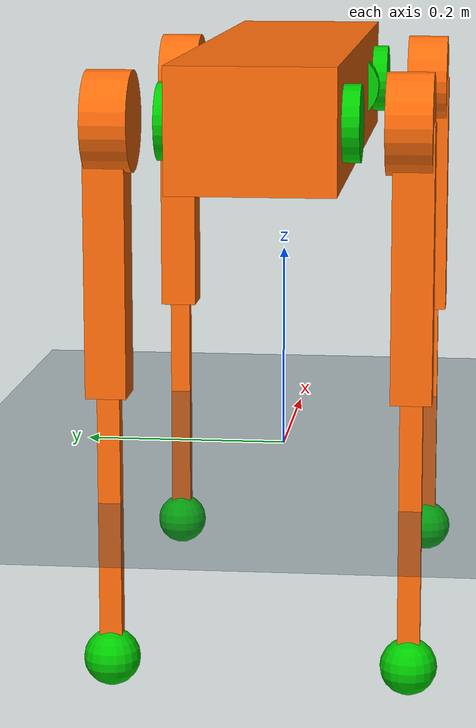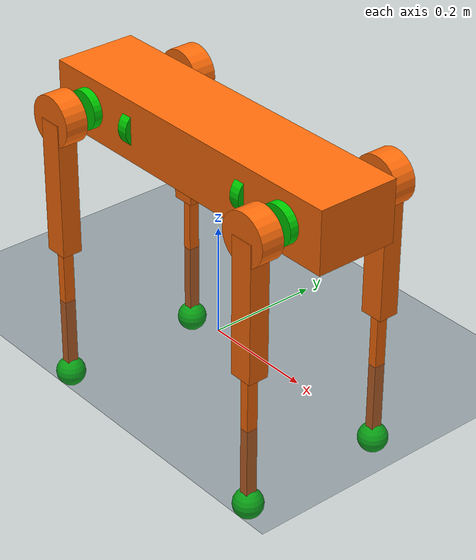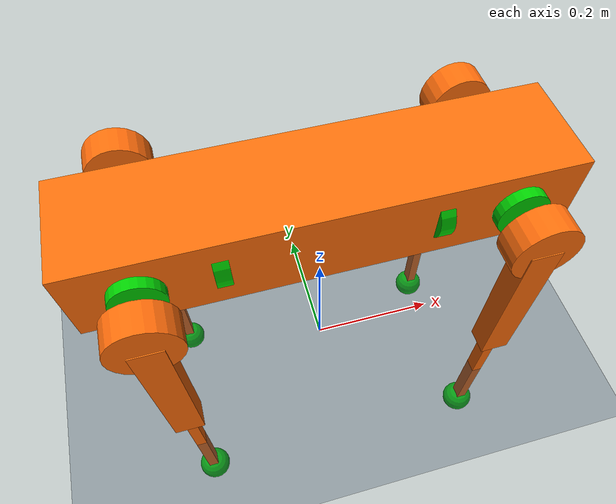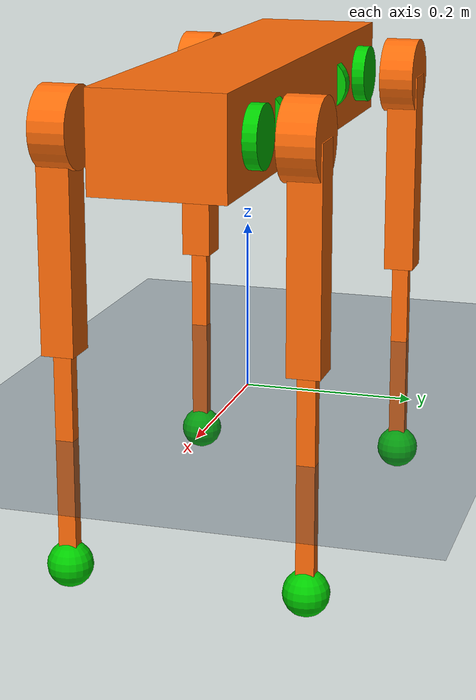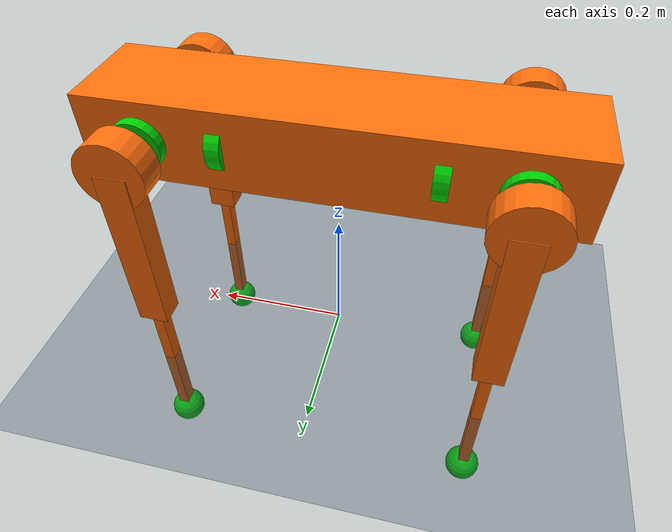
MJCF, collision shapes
<mujoco model="aliengo">
  <compiler angle="radian" meshdir="../meshes/" />

  <option timestep='0.001' iterations='50' solver='PGS' gravity='0 0 -9.81'/>
  <visual>
    <global fovy="60" />
  </visual>

  <asset>
    <mesh name="trunk" file="trunk.stl" />
    <mesh name="hip" file="hip.stl" />
    <mesh name="thigh_mirror" file="thigh_mirror.stl" />
    <mesh name="calf" file="calf.stl" />
    <mesh name="thigh" file="thigh.stl" />
    <texture name="texplane" type="2d" builtin="checker" rgb1=".2 .3 .4" rgb2=".1 0.15 0.2"
        width="512" height="512" mark="cross" markrgb=".8 .8 .8"/>
    <material name="matplane" reflectance="0." texture="texplane" texrepeat="1 1" texuniform="true"/>
  </asset>

  <worldbody>
    <light directional="true" diffuse=".4 .4 .4" specular="0.1 0.1 0.1" pos="0 0 5.0" dir="0 0 -1"
      castshadow="false" />
    <light directional="true" diffuse=".6 .6 .6" specular="0.2 0.2 0.2" pos="0 0 4" dir="0 0 -1" />
    <geom name="ground" type="plane" size="0 0 1" pos="0.001 0 0" quat="1 0 0 0" material="matplane"
      condim="1" conaffinity='15' />

    <body name="base" pos="0.0 0.0 0.35">
      <geom type="mesh" contype="0" conaffinity="0" group="1" density="0"
        rgba="1 0.423529 0.0392157 1" mesh="trunk" />

      <inertial pos="0.008811 0.003839 0.000273" mass="11.644" diaginertia="0.051944892 0.24693924 0.270948307" />
      <joint type='slide' axis='1 0 0' limited='false' />
      <joint type='slide' axis='0 1 0' limited='false' />
      <joint type='slide' axis='0 0 1' limited='false' />
      <joint type='ball' limited='false' />
      <site name='imu' size='0.01' pos='0.0 0 0.0'/>

      <geom size="0.0005 0.0005 0.0005" type="box" contype="0" conaffinity="0" group="1" density="0" />
      <geom size="0.3235 0.075 0.056" type="box" rgba="1 0.423529 0.0392157 1" />
      <geom size="0.0005 0.0005 0.0005" type="box" contype="0" conaffinity="0" group="1" density="0"
        rgba="0.8 0 0 1" />
      <geom size="0.0005 0.0005 0.0005" type="box" rgba="0.8 0 0 1" />
      <geom size="0.035 0.01" pos="0.139985 -0.051 0" quat="0.707107 0 0.707107 0" type="cylinder"
        contype="0" conaffinity="0" group="1" density="0" rgba="0 0.8 0 1" />
      <geom size="0.035 0.01" pos="0.139985 -0.051 0" quat="0.707107 0 0.707107 0" type="cylinder"
        rgba="0 0.8 0 1" />
      <geom size="0.035 0.01" pos="0.139985 0.051 0" quat="0.707107 0 0.707107 0" type="cylinder"
        contype="0" conaffinity="0" group="1" density="0" rgba="0 0.8 0 1" />
      <geom size="0.035 0.01" pos="0.139985 0.051 0" quat="0.707107 0 0.707107 0" type="cylinder"
        rgba="0 0.8 0 1" />
      <geom size="0.035 0.01" pos="-0.139985 -0.051 0" quat="0.707107 0 0.707107 0" type="cylinder"
        contype="0" conaffinity="0" group="1" density="0" rgba="0 0.8 0 1" />
      <geom size="0.035 0.01" pos="-0.139985 -0.051 0" quat="0.707107 0 0.707107 0" type="cylinder"
        rgba="0 0.8 0 1" />
      <geom size="0.035 0.01" pos="-0.139985 0.051 0" quat="0.707107 0 0.707107 0" type="cylinder"
        contype="0" conaffinity="0" group="1" density="0" rgba="0 0.8 0 1" />
      <geom size="0.035 0.01" pos="-0.139985 0.051 0" quat="0.707107 0 0.707107 0" type="cylinder"
        rgba="0 0.8 0 1" />
      <body name="FR_hip" pos="0.2407 -0.051 0">
        <inertial pos="-0.0206763 -0.0161444 -1.39762e-05" quat="0.58092 0.574831 0.412459 0.402465"
          mass="2.139" diaginertia="0.0043606 0.0043277 0.00233028" />
        <joint name="FR_hip_joint" pos="0 0 0" axis="1 0 0" range="-1.22173 1.22173"
          actuatorfrcrange="-35.278 35.278" />
        <geom quat="0 1 0 0" type="mesh" contype="0" conaffinity="0" group="1" density="0"
          rgba="1 0.423529 0.0392157 1" mesh="hip" />
        <geom size="0.046 0.0209" pos="0 -0.083 0" quat="0.707107 0.707107 0 0" type="cylinder"
          rgba="1 0.423529 0.0392157 1" />
        <geom size="0.035 0.01" pos="0 -0.0298 0" quat="0.707107 0.707107 0 0" type="cylinder"
          contype="0" conaffinity="0" group="1" density="0" rgba="0 0.8 0 1" />
        <geom size="0.035 0.01" pos="0 -0.0298 0" quat="0.707107 0.707107 0 0" type="cylinder"
          rgba="0 0.8 0 1" />
        <body name="FR_thigh" pos="0 -0.0868 0">
          <inertial pos="-0.00464705 0.0202825 -0.039947"
            quat="0.994998 -0.0906147 0.0414285 -0.0071304" mass="0.771"
            diaginertia="0.00560787 0.004847 0.00135111" />
          <joint name="FR_thigh_joint" pos="0 0 0" axis="0 1 0" actuatorfrcrange="-35.278 35.278" />
          <geom type="mesh" contype="0" conaffinity="0" group="1" density="0"
            rgba="1 0.423529 0.0392157 1" mesh="thigh_mirror" />
          <geom size="0.125 0.0187 0.0215" pos="0 0 -0.125" quat="0.707107 0 0.707107 0" type="box"
            rgba="1 0.423529 0.0392157 1" />
          <geom size="0.035 0.01" pos="0 0.0997 0" quat="0.707107 0.707107 0 0" type="cylinder"
            contype="0" conaffinity="0" group="1" density="0" rgba="0 0.8 0 1" />
          <geom size="0.035 0.01" pos="0 0.0997 0" quat="0.707107 0.707107 0 0" type="cylinder"
            rgba="0 0.8 0 1" />
          <body name="FR_calf" pos="0 0 -0.25">
            <inertial pos="0.00215606 4.88427e-05 -0.166671"
              quat="0.708049 0.000982931 0.00120829 0.706161" mass="0.267"
              diaginertia="0.00269606 0.00268354 5.47714e-05" />
            <joint name="FR_calf_joint" pos="0 0 0" axis="0 1 0" range="-2.77507 -0.645772"
              actuatorfrcrange="-44.4 44.4" />
            <geom type="mesh" contype="0" conaffinity="0" group="1" density="0"
              rgba="1 0.423529 0.0392157 1" mesh="calf" />
            <geom size="0.125 0.0104 0.008" pos="0 0 -0.125" quat="0.707107 0 0.707107 0" type="box"
              rgba="1 0.423529 0.0392157 1" />
            <geom size="0.0165" pos="0 0 -0.25" contype="0" conaffinity="0" group="1" density="0"
              rgba="0 0.8 0 1" />
            <geom size="0.0265" pos="0 0 -0.25" rgba="0 0.8 0 1" />
          </body>
        </body>
      </body>
      <body name="FL_hip" pos="0.2407 0.051 0">
        <inertial pos="-0.0206763 0.0161444 -1.39762e-05" quat="0.402465 0.412459 0.574831 0.58092"
          mass="2.139" diaginertia="0.0043606 0.0043277 0.00233028" />
        <joint name="FL_hip_joint" pos="0 0 0" axis="1 0 0" range="-1.22173 1.22173"
          actuatorfrcrange="-35.278 35.278" />
        <geom type="mesh" contype="0" conaffinity="0" group="1" density="0"
          rgba="1 0.423529 0.0392157 1" mesh="hip" />
        <geom size="0.046 0.0209" pos="0 0.083 0" quat="0.707107 0.707107 0 0" type="cylinder"
          rgba="1 0.423529 0.0392157 1" />
        <geom size="0.035 0.01" pos="0 0.0298 0" quat="0.707107 0.707107 0 0" type="cylinder"
          contype="0" conaffinity="0" group="1" density="0" rgba="0 0.8 0 1" />
        <geom size="0.035 0.01" pos="0 0.0298 0" quat="0.707107 0.707107 0 0" type="cylinder"
          rgba="0 0.8 0 1" />
        <body name="FL_thigh" pos="0 0.0868 0">
          <inertial pos="-0.00464705 -0.0202825 -0.039947"
            quat="0.994998 0.0906147 0.0414285 0.0071304" mass="0.771"
            diaginertia="0.00560787 0.004847 0.00135111" />
          <joint name="FL_thigh_joint" pos="0 0 0" axis="0 1 0" actuatorfrcrange="-35.278 35.278" />
          <geom type="mesh" contype="0" conaffinity="0" group="1" density="0"
            rgba="1 0.423529 0.0392157 1" mesh="thigh" />
          <geom size="0.125 0.0187 0.0215" pos="0 0 -0.125" quat="0.707107 0 0.707107 0" type="box"
            rgba="1 0.423529 0.0392157 1" />
          <geom size="0.035 0.01" pos="0 -0.0997 0" quat="0.707107 0.707107 0 0" type="cylinder"
            contype="0" conaffinity="0" group="1" density="0" rgba="0 0.8 0 1" />
          <geom size="0.035 0.01" pos="0 -0.0997 0" quat="0.707107 0.707107 0 0" type="cylinder"
            rgba="0 0.8 0 1" />
          <body name="FL_calf" pos="0 0 -0.25">
            <inertial pos="0.00215606 4.88427e-05 -0.166671"
              quat="0.708049 0.000982931 0.00120829 0.706161" mass="0.267"
              diaginertia="0.00269606 0.00268354 5.47714e-05" />
            <joint name="FL_calf_joint" pos="0 0 0" axis="0 1 0" range="-2.77507 -0.645772"
              actuatorfrcrange="-44.4 44.4" />
            <geom type="mesh" contype="0" conaffinity="0" group="1" density="0"
              rgba="1 0.423529 0.0392157 1" mesh="calf" />
            <geom size="0.125 0.0104 0.008" pos="0 0 -0.125" quat="0.707107 0 0.707107 0" type="box"
              rgba="1 0.423529 0.0392157 1" />
            <geom size="0.0165" pos="0 0 -0.25" contype="0" conaffinity="0" group="1" density="0"
              rgba="0 0.8 0 1" />
            <geom size="0.0265" pos="0 0 -0.25" rgba="0 0.8 0 1" />
          </body>
        </body>
      </body>
      <body name="RR_hip" pos="-0.2407 -0.051 0">
        <inertial pos="0.0206763 -0.0161444 -1.39762e-05" quat="0.412459 0.402465 0.58092 0.574831"
          mass="2.139" diaginertia="0.0043606 0.0043277 0.00233028" />
        <joint name="RR_hip_joint" pos="0 0 0" axis="1 0 0" range="-1.22173 1.22173"
          actuatorfrcrange="-35.278 35.278" />
        <geom quat="0 0 0 -1" type="mesh" contype="0" conaffinity="0" group="1" density="0"
          rgba="1 0.423529 0.0392157 1" mesh="hip" />
        <geom size="0.046 0.0209" pos="0 -0.083 0" quat="0.707107 0.707107 0 0" type="cylinder"
          rgba="1 0.423529 0.0392157 1" />
        <geom size="0.035 0.01" pos="0 -0.0298 0" quat="0.707107 0.707107 0 0" type="cylinder"
          contype="0" conaffinity="0" group="1" density="0" rgba="0 0.8 0 1" />
        <geom size="0.035 0.01" pos="0 -0.0298 0" quat="0.707107 0.707107 0 0" type="cylinder"
          rgba="0 0.8 0 1" />
        <body name="RR_thigh" pos="0 -0.0868 0">
          <inertial pos="-0.00464705 0.0202825 -0.039947"
            quat="0.994998 -0.0906147 0.0414285 -0.0071304" mass="0.771"
            diaginertia="0.00560787 0.004847 0.00135111" />
          <joint name="RR_thigh_joint" pos="0 0 0" axis="0 1 0" actuatorfrcrange="-35.278 35.278" />
          <geom type="mesh" contype="0" conaffinity="0" group="1" density="0"
            rgba="1 0.423529 0.0392157 1" mesh="thigh_mirror" />
          <geom size="0.125 0.0187 0.0215" pos="0 0 -0.125" quat="0.707107 0 0.707107 0" type="box"
            rgba="1 0.423529 0.0392157 1" />
          <geom size="0.035 0.01" pos="0 0.0997 0" quat="0.707107 0.707107 0 0" type="cylinder"
            contype="0" conaffinity="0" group="1" density="0" rgba="0 0.8 0 1" />
          <geom size="0.035 0.01" pos="0 0.0997 0" quat="0.707107 0.707107 0 0" type="cylinder"
            rgba="0 0.8 0 1" />
          <body name="RR_calf" pos="0 0 -0.25">
            <inertial pos="0.00215606 4.88427e-05 -0.166671"
              quat="0.708049 0.000982931 0.00120829 0.706161" mass="0.267"
              diaginertia="0.00269606 0.00268354 5.47714e-05" />
            <joint name="RR_calf_joint" pos="0 0 0" axis="0 1 0" range="-2.77507 -0.645772"
              actuatorfrcrange="-44.4 44.4" />
            <geom type="mesh" contype="0" conaffinity="0" group="1" density="0"
              rgba="1 0.423529 0.0392157 1" mesh="calf" />
            <geom size="0.125 0.0104 0.008" pos="0 0 -0.125" quat="0.707107 0 0.707107 0" type="box"
              rgba="1 0.423529 0.0392157 1" />
            <geom size="0.0165" pos="0 0 -0.25" contype="0" conaffinity="0" group="1" density="0"
              rgba="0 0.8 0 1" />
            <geom size="0.0265" pos="0 0 -0.25" rgba="0 0.8 0 1" />
          </body>
        </body>
      </body>
      <body name="RL_hip" pos="-0.2407 0.051 0">
        <inertial pos="0.0206763 0.0161444 -1.39762e-05" quat="0.574831 0.58092 0.402465 0.412459"
          mass="2.139" diaginertia="0.0043606 0.0043277 0.00233028" />
        <joint name="RL_hip_joint" pos="0 0 0" axis="1 0 0" range="-1.22173 1.22173"
          actuatorfrcrange="-35.278 35.278" />
        <geom quat="0 0 1 0" type="mesh" contype="0" conaffinity="0" group="1" density="0"
          rgba="1 0.423529 0.0392157 1" mesh="hip" />
        <geom size="0.046 0.0209" pos="0 0.083 0" quat="0.707107 0.707107 0 0" type="cylinder"
          rgba="1 0.423529 0.0392157 1" />
        <geom size="0.035 0.01" pos="0 0.0298 0" quat="0.707107 0.707107 0 0" type="cylinder"
          contype="0" conaffinity="0" group="1" density="0" rgba="0 0.8 0 1" />
        <geom size="0.035 0.01" pos="0 0.0298 0" quat="0.707107 0.707107 0 0" type="cylinder"
          rgba="0 0.8 0 1" />
        <body name="RL_thigh" pos="0 0.0868 0">
          <inertial pos="-0.00464705 -0.0202825 -0.039947"
            quat="0.994998 0.0906147 0.0414285 0.0071304" mass="0.771"
            diaginertia="0.00560787 0.004847 0.00135111" />
          <joint name="RL_thigh_joint" pos="0 0 0" axis="0 1 0" actuatorfrcrange="-35.278 35.278" />
          <geom type="mesh" contype="0" conaffinity="0" group="1" density="0"
            rgba="1 0.423529 0.0392157 1" mesh="thigh" />
          <geom size="0.125 0.0187 0.0215" pos="0 0 -0.125" quat="0.707107 0 0.707107 0" type="box"
            rgba="1 0.423529 0.0392157 1" />
          <geom size="0.035 0.01" pos="0 -0.0997 0" quat="0.707107 0.707107 0 0" type="cylinder"
            contype="0" conaffinity="0" group="1" density="0" rgba="0 0.8 0 1" />
          <geom size="0.035 0.01" pos="0 -0.0997 0" quat="0.707107 0.707107 0 0" type="cylinder"
            rgba="0 0.8 0 1" />
          <body name="RL_calf" pos="0 0 -0.25">
            <inertial pos="0.00215606 4.88427e-05 -0.166671"
              quat="0.708049 0.000982931 0.00120829 0.706161" mass="0.267"
              diaginertia="0.00269606 0.00268354 5.47714e-05" />
            <joint name="RL_calf_joint" pos="0 0 0" axis="0 1 0" range="-2.77507 -0.645772"
              actuatorfrcrange="-44.4 44.4" />
            <geom type="mesh" contype="0" conaffinity="0" group="1" density="0"
              rgba="1 0.423529 0.0392157 1" mesh="calf" />
            <geom size="0.125 0.0104 0.008" pos="0 0 -0.125" quat="0.707107 0 0.707107 0" type="box"
              rgba="1 0.423529 0.0392157 1" />
            <geom size="0.0165" pos="0 0 -0.25" contype="0" conaffinity="0" group="1" density="0"
              rgba="0 0.8 0 1" />
            <geom size="0.0265" pos="0 0 -0.25" rgba="0 0.8 0 1" />
          </body>
        </body>
      </body>

    </body>
  </worldbody>
  <actuator>
    <!-- Front Right Leg (FR) -->
    <motor name="FR_hip_joint" joint="FR_hip_joint" gear="1" ctrllimited="true" ctrlrange="-200 200" />
    <motor name="FR_thigh_joint" joint="FR_thigh_joint" gear="1" ctrllimited="true"
      ctrlrange="-200 200" />
    <motor name="FR_calf_joint" joint="FR_calf_joint" gear="1" ctrllimited="true"
      ctrlrange="-200 200" />

    <!-- Front Left Leg (FL) -->
    <motor name="FL_hip_joint" joint="FL_hip_joint" gear="1" ctrllimited="true" ctrlrange="-200 200" />
    <motor name="FL_thigh_joint" joint="FL_thigh_joint" gear="1" ctrllimited="true"
      ctrlrange="-200 200" />
    <motor name="FL_calf_joint" joint="FL_calf_joint" gear="1" ctrllimited="true"
      ctrlrange="-200 200" />

    <!-- Rear Right Leg (RR) -->
    <motor name="RR_hip_joint" joint="RR_hip_joint" gear="1" ctrllimited="true" ctrlrange="-200 200" />
    <motor name="RR_thigh_joint" joint="RR_thigh_joint" gear="1" ctrllimited="true"
      ctrlrange="-200 200" />
    <motor name="RR_calf_joint" joint="RR_calf_joint" gear="1" ctrllimited="true"
      ctrlrange="-200 200" />

    <!-- Rear Left Leg (RL) -->
    <motor name="RL_hip_joint" joint="RL_hip_joint" gear="1" ctrllimited="true" ctrlrange="-200 200" />
    <motor name="RL_thigh_joint" joint="RL_thigh_joint" gear="1" ctrllimited="true"
      ctrlrange="-200 200" />
    <motor name="RL_calf_joint" joint="RL_calf_joint" gear="1" ctrllimited="true"
      ctrlrange="-200 200" />
  </actuator>

  <sensor>
    <framequat name='orientation' objtype='site' objname='imu' />
  </sensor>
</mujoco>
